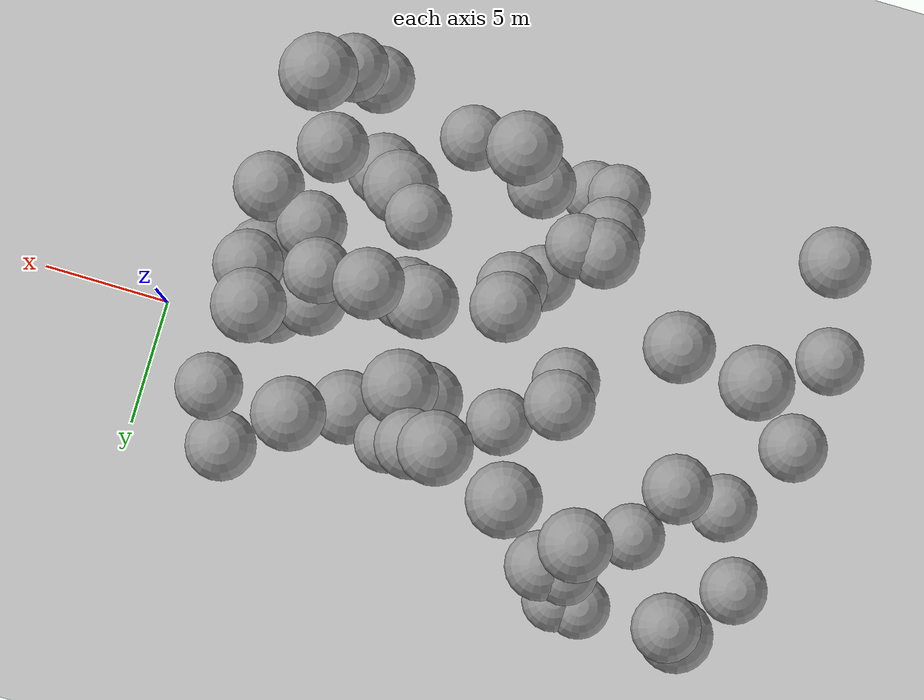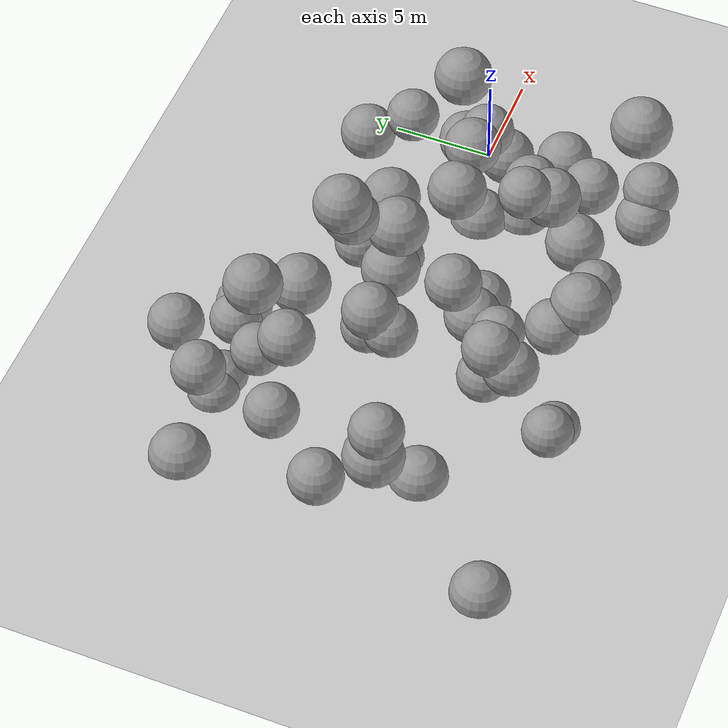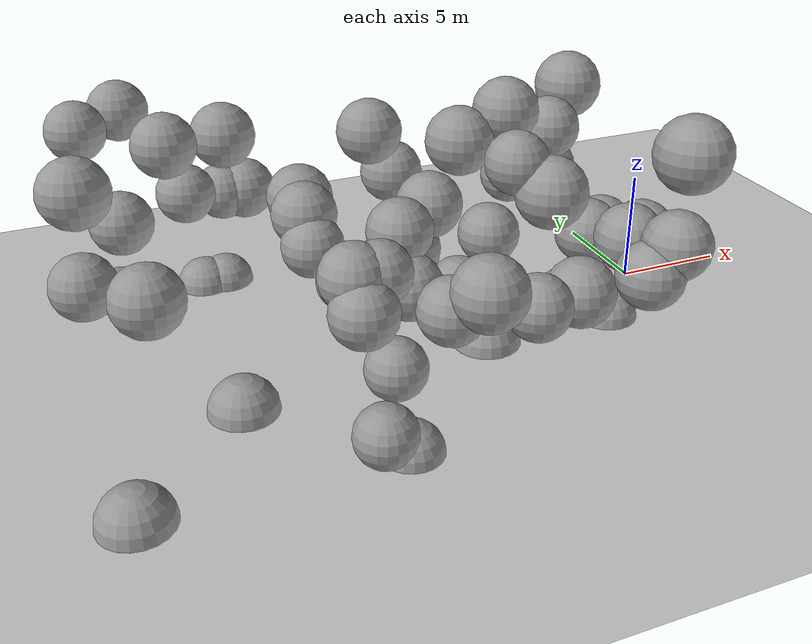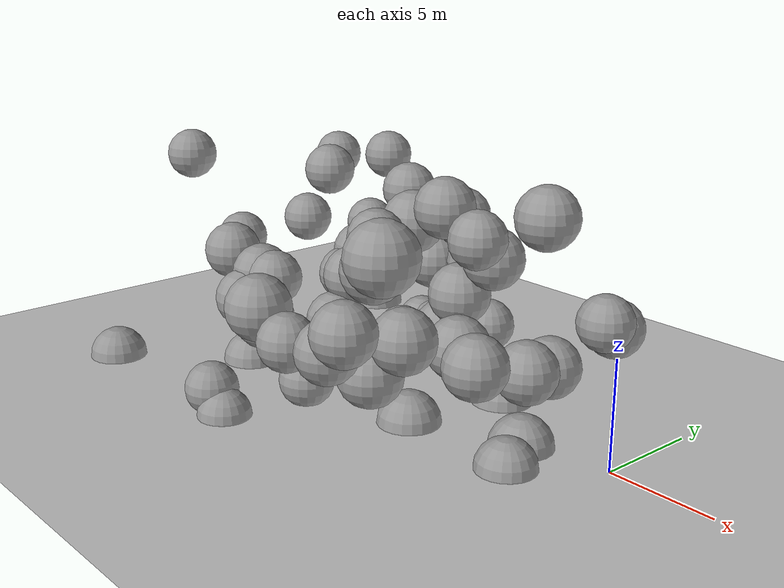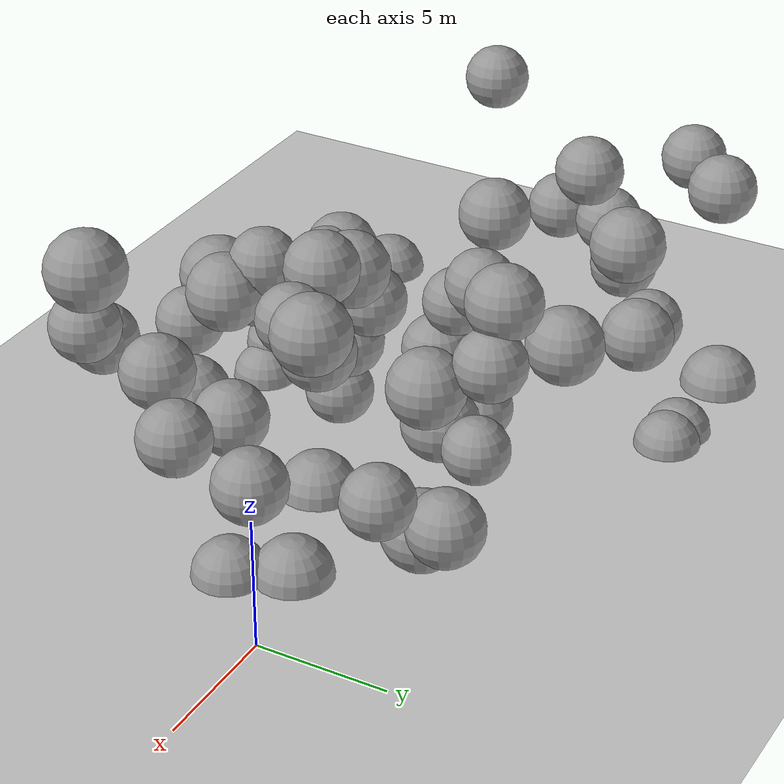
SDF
<sdf version="1.7">
 <world name="default">
  <model name="ground_plane">
   <static>1</static>
   <link name="link">
    <collision name="collision">
     <geometry><plane><normal>0 0 1</normal><size>100 100</size></plane></geometry>
     <surface>
      <contact><collide_bitmask>65535</collide_bitmask></contact>
      <friction><ode><mu>100</mu><mu2>50</mu2></ode></friction>
     </surface>
    </collision>
    <visual name="visual">
     <cast_shadows>0</cast_shadows>
     <geometry><plane><normal>0 0 1</normal><size>100 100</size></plane></geometry>
     <material>
      <script><uri>file://media/materials/scripts/gazebo.material</uri><name>Gazebo/Grey</name></script>
     </material>
    </visual>
   </link>
  </model>
  <model name="sphere_19">
   <static>1</static>
   <pose>-5 -7 6 0 0 0</pose>
   <link name="link">
    <inertial>
     <mass>1093.7044318353844</mass>
     <inertia>
      <ixx>829.5340265991515</ixx>
      <iyy>829.5340265991515</iyy>
      <izz>829.5340265991515</izz>
      <ixy>0</ixy>
      <ixz>0</ixz>
      <iyz>0</iyz>
     </inertia>
    </inertial>
    <collision name="collision">
     <geometry><sphere><radius>1.3770100847044313</radius></sphere></geometry>
    </collision>
    <visual name="visual">
     <geometry><sphere><radius>1.3770100847044313</radius></sphere></geometry>
     <material>
      <script><uri>file://media/materials/scripts/gazebo.material</uri><name>Gazebo/Grey</name></script>
     </material>
    </visual>
   </link>
  </model>
  <model name="sphere_20">
   <static>1</static>
   <pose>-12 -9 6 0 0 0</pose>
   <link name="link">
    <inertial>
     <mass>1336.6317615630337</mass>
     <inertia>
      <ixx>1158.8321791067362</ixx>
      <iyy>1158.8321791067362</iyy>
      <izz>1158.8321791067362</izz>
      <ixy>0</ixy>
      <ixz>0</ixz>
      <iyz>0</iyz>
     </inertia>
    </inertial>
    <collision name="collision">
     <geometry><sphere><radius>1.4722256810506325</radius></sphere></geometry>
    </collision>
    <visual name="visual">
     <geometry><sphere><radius>1.4722256810506325</radius></sphere></geometry>
     <material>
      <script><uri>file://media/materials/scripts/gazebo.material</uri><name>Gazebo/Grey</name></script>
     </material>
    </visual>
   </link>
  </model>
  <model name="sphere_26">
   <static>1</static>
   <pose>-15 -6 6 0 0 0</pose>
   <link name="link">
    <inertial>
     <mass>847.9089603285704</mass>
     <inertia>
      <ixx>542.7289144185544</ixx>
      <iyy>542.7289144185544</iyy>
      <izz>542.7289144185544</izz>
      <ixy>0</ixy>
      <ixz>0</ixz>
      <iyz>0</iyz>
     </inertia>
    </inertial>
    <collision name="collision">
     <geometry><sphere><radius>1.2649893576409998</radius></sphere></geometry>
    </collision>
    <visual name="visual">
     <geometry><sphere><radius>1.2649893576409998</radius></sphere></geometry>
     <material>
      <script><uri>file://media/materials/scripts/gazebo.material</uri><name>Gazebo/Grey</name></script>
     </material>
    </visual>
   </link>
  </model>
  <model name="sphere_32">
   <static>1</static>
   <pose>-23 7 0 0 0 0</pose>
   <link name="link">
    <inertial>
     <mass>1402.8813819536108</mass>
     <inertia>
      <ixx>1256.1336150803506</ixx>
      <iyy>1256.1336150803506</iyy>
      <izz>1256.1336150803506</izz>
      <ixy>0</ixy>
      <ixz>0</ixz>
      <iyz>0</iyz>
     </inertia>
    </inertial>
    <collision name="collision">
     <geometry><sphere><radius>1.4961579597967176</radius></sphere></geometry>
    </collision>
    <visual name="visual">
     <geometry><sphere><radius>1.4961579597967176</radius></sphere></geometry>
     <material>
      <script><uri>file://media/materials/scripts/gazebo.material</uri><name>Gazebo/Grey</name></script>
     </material>
    </visual>
   </link>
  </model>
  <model name="sphere_41">
   <static>1</static>
   <pose>-3 -2 4 0 0 0</pose>
   <link name="link">
    <inertial>
     <mass>1096.0352797248263</mass>
     <inertia>
      <ixx>832.482554544336</ixx>
      <iyy>832.482554544336</iyy>
      <izz>832.482554544336</izz>
      <ixy>0</ixy>
      <ixz>0</ixz>
      <iyz>0</iyz>
     </inertia>
    </inertial>
    <collision name="collision">
     <geometry><sphere><radius>1.3779875955093646</radius></sphere></geometry>
    </collision>
    <visual name="visual">
     <geometry><sphere><radius>1.3779875955093646</radius></sphere></geometry>
     <material>
      <script><uri>file://media/materials/scripts/gazebo.material</uri><name>Gazebo/Grey</name></script>
     </material>
    </visual>
   </link>
  </model>
  <model name="sphere_44">
   <static>1</static>
   <pose>-9 -5 9 0 0 0</pose>
   <link name="link">
    <inertial>
     <mass>824.6339255756457</mass>
     <inertia>
      <ixx>518.1270283856265</ixx>
      <iyy>518.1270283856265</iyy>
      <izz>518.1270283856265</izz>
      <ixy>0</ixy>
      <ixz>0</ixz>
      <iyz>0</iyz>
     </inertia>
    </inertial>
    <collision name="collision">
     <geometry><sphere><radius>1.25330718522653</radius></sphere></geometry>
    </collision>
    <visual name="visual">
     <geometry><sphere><radius>1.25330718522653</radius></sphere></geometry>
     <material>
      <script><uri>file://media/materials/scripts/gazebo.material</uri><name>Gazebo/Grey</name></script>
     </material>
    </visual>
   </link>
  </model>
  <model name="sphere_54">
   <static>1</static>
   <pose>-10 1 5 0 0 0</pose>
   <link name="link">
    <inertial>
     <mass>1391.169380083111</mass>
     <inertia>
      <ixx>1238.7041771213894</ixx>
      <iyy>1238.7041771213894</iyy>
      <izz>1238.7041771213894</izz>
      <ixy>0</ixy>
      <ixz>0</ixz>
      <iyz>0</iyz>
     </inertia>
    </inertial>
    <collision name="collision">
     <geometry><sphere><radius>1.4919827443478662</radius></sphere></geometry>
    </collision>
    <visual name="visual">
     <geometry><sphere><radius>1.4919827443478662</radius></sphere></geometry>
     <material>
      <script><uri>file://media/materials/scripts/gazebo.material</uri><name>Gazebo/Grey</name></script>
     </material>
    </visual>
   </link>
  </model>
  <model name="sphere_57">
   <static>1</static>
   <pose>-10 -9 5 0 0 0</pose>
   <link name="link">
    <inertial>
     <mass>907.7839191998896</mass>
     <inertia>
      <ixx>608.0954126280432</ixx>
      <iyy>608.0954126280432</iyy>
      <izz>608.0954126280432</izz>
      <ixy>0</ixy>
      <ixz>0</ixz>
      <iyz>0</iyz>
     </inertia>
    </inertial>
    <collision name="collision">
     <geometry><sphere><radius>1.2940904293056101</radius></sphere></geometry>
    </collision>
    <visual name="visual">
     <geometry><sphere><radius>1.2940904293056101</radius></sphere></geometry>
     <material>
      <script><uri>file://media/materials/scripts/gazebo.material</uri><name>Gazebo/Grey</name></script>
     </material>
    </visual>
   </link>
  </model>
  <model name="sphere_58">
   <static>1</static>
   <pose>-21 2 9 0 0 0</pose>
   <link name="link">
    <inertial>
     <mass>949.9771881731713</mass>
     <inertia>
      <ixx>655.9280644154733</ixx>
      <iyy>655.9280644154733</iyy>
      <izz>655.9280644154733</izz>
      <ixy>0</ixy>
      <ixz>0</ixz>
      <iyz>0</iyz>
     </inertia>
    </inertial>
    <collision name="collision">
     <geometry><sphere><radius>1.3138371036105974</radius></sphere></geometry>
    </collision>
    <visual name="visual">
     <geometry><sphere><radius>1.3138371036105974</radius></sphere></geometry>
     <material>
      <script><uri>file://media/materials/scripts/gazebo.material</uri><name>Gazebo/Grey</name></script>
     </material>
    </visual>
   </link>
  </model>
  <model name="sphere_67">
   <static>1</static>
   <pose>-12 3 8 0 0 0</pose>
   <link name="link">
    <inertial>
     <mass>1238.7565536485702</mass>
     <inertia>
      <ixx>1020.8866555947956</ixx>
      <iyy>1020.8866555947956</iyy>
      <izz>1020.8866555947956</izz>
      <ixy>0</ixy>
      <ixz>0</ixz>
      <iyz>0</iyz>
     </inertia>
    </inertial>
    <collision name="collision">
     <geometry><sphere><radius>1.4353763466368932</radius></sphere></geometry>
    </collision>
    <visual name="visual">
     <geometry><sphere><radius>1.4353763466368932</radius></sphere></geometry>
     <material>
      <script><uri>file://media/materials/scripts/gazebo.material</uri><name>Gazebo/Grey</name></script>
     </material>
    </visual>
   </link>
  </model>
  <model name="sphere_72">
   <static>1</static>
   <pose>-18 7 0 0 0 0</pose>
   <link name="link">
    <inertial>
     <mass>863.301847766727</mass>
     <inertia>
      <ixx>559.2491970385797</ixx>
      <iyy>559.2491970385797</iyy>
      <izz>559.2491970385797</izz>
      <ixy>0</ixy>
      <ixz>0</ixz>
      <iyz>0</iyz>
     </inertia>
    </inertial>
    <collision name="collision">
     <geometry><sphere><radius>1.2725983438620174</radius></sphere></geometry>
    </collision>
    <visual name="visual">
     <geometry><sphere><radius>1.2725983438620174</radius></sphere></geometry>
     <material>
      <script><uri>file://media/materials/scripts/gazebo.material</uri><name>Gazebo/Grey</name></script>
     </material>
    </visual>
   </link>
  </model>
  <model name="sphere_82">
   <static>1</static>
   <pose>-13 -8 5 0 0 0</pose>
   <link name="link">
    <inertial>
     <mass>993.5986481438041</mass>
     <inertia>
      <ixx>706.8911942818235</ixx>
      <iyy>706.8911942818235</iyy>
      <izz>706.8911942818235</izz>
      <ixy>0</ixy>
      <ixz>0</ixz>
      <iyz>0</iyz>
     </inertia>
    </inertial>
    <collision name="collision">
     <geometry><sphere><radius>1.333646698582785</radius></sphere></geometry>
    </collision>
    <visual name="visual">
     <geometry><sphere><radius>1.333646698582785</radius></sphere></geometry>
     <material>
      <script><uri>file://media/materials/scripts/gazebo.material</uri><name>Gazebo/Grey</name></script>
     </material>
    </visual>
   </link>
  </model>
  <model name="sphere_87">
   <static>1</static>
   <pose>-15 -9 0 0 0 0</pose>
   <link name="link">
    <inertial>
     <mass>879.4776927961007</mass>
     <inertia>
      <ixx>576.8226416967553</ixx>
      <iyy>576.8226416967553</iyy>
      <izz>576.8226416967553</izz>
      <ixy>0</ixy>
      <ixz>0</ixz>
      <iyz>0</iyz>
     </inertia>
    </inertial>
    <collision name="collision">
     <geometry><sphere><radius>1.2804975141626107</radius></sphere></geometry>
    </collision>
    <visual name="visual">
     <geometry><sphere><radius>1.2804975141626107</radius></sphere></geometry>
     <material>
      <script><uri>file://media/materials/scripts/gazebo.material</uri><name>Gazebo/Grey</name></script>
     </material>
    </visual>
   </link>
  </model>
  <model name="sphere_90">
   <static>1</static>
   <pose>-7 -7 4 0 0 0</pose>
   <link name="link">
    <inertial>
     <mass>1260.3667000807275</mass>
     <inertia>
      <ixx>1050.741258221471</ixx>
      <iyy>1050.741258221471</iyy>
      <izz>1050.741258221471</izz>
      <ixy>0</ixy>
      <ixz>0</ixz>
      <iyz>0</iyz>
     </inertia>
    </inertial>
    <collision name="collision">
     <geometry><sphere><radius>1.4436750035922459</radius></sphere></geometry>
    </collision>
    <visual name="visual">
     <geometry><sphere><radius>1.4436750035922459</radius></sphere></geometry>
     <material>
      <script><uri>file://media/materials/scripts/gazebo.material</uri><name>Gazebo/Grey</name></script>
     </material>
    </visual>
   </link>
  </model>
  <model name="sphere_97">
   <static>1</static>
   <pose>-6 -1 8 0 0 0</pose>
   <link name="link">
    <inertial>
     <mass>1048.4489450408112</mass>
     <inertia>
      <ixx>773.1190896051552</ixx>
      <iyy>773.1190896051552</iyy>
      <izz>773.1190896051552</izz>
      <ixy>0</ixy>
      <ixz>0</ixz>
      <iyz>0</iyz>
     </inertia>
    </inertial>
    <collision name="collision">
     <geometry><sphere><radius>1.3577492114806395</radius></sphere></geometry>
    </collision>
    <visual name="visual">
     <geometry><sphere><radius>1.3577492114806395</radius></sphere></geometry>
     <material>
      <script><uri>file://media/materials/scripts/gazebo.material</uri><name>Gazebo/Grey</name></script>
     </material>
    </visual>
   </link>
  </model>
  <model name="sphere_116">
   <static>1</static>
   <pose>-16 -6 6 0 0 0</pose>
   <link name="link">
    <inertial>
     <mass>1085.6466940816001</mass>
     <inertia>
      <ixx>819.3732387266793</ixx>
      <iyy>819.3732387266793</iyy>
      <izz>819.3732387266793</izz>
      <ixy>0</ixy>
      <ixz>0</ixz>
      <iyz>0</iyz>
     </inertia>
    </inertial>
    <collision name="collision">
     <geometry><sphere><radius>1.3736200930474969</radius></sphere></geometry>
    </collision>
    <visual name="visual">
     <geometry><sphere><radius>1.3736200930474969</radius></sphere></geometry>
     <material>
      <script><uri>file://media/materials/scripts/gazebo.material</uri><name>Gazebo/Grey</name></script>
     </material>
    </visual>
   </link>
  </model>
  <model name="sphere_117">
   <static>1</static>
   <pose>-20 -4 0 0 0 0</pose>
   <link name="link">
    <inertial>
     <mass>1292.4610515235715</mass>
     <inertia>
      <ixx>1095.7126927057595</ixx>
      <iyy>1095.7126927057595</iyy>
      <izz>1095.7126927057595</izz>
      <ixy>0</ixy>
      <ixz>0</ixz>
      <iyz>0</iyz>
     </inertia>
    </inertial>
    <collision name="collision">
     <geometry><sphere><radius>1.455826493042546</radius></sphere></geometry>
    </collision>
    <visual name="visual">
     <geometry><sphere><radius>1.455826493042546</radius></sphere></geometry>
     <material>
      <script><uri>file://media/materials/scripts/gazebo.material</uri><name>Gazebo/Grey</name></script>
     </material>
    </visual>
   </link>
  </model>
  <model name="sphere_123">
   <static>1</static>
   <pose>-25 -1 5 0 0 0</pose>
   <link name="link">
    <inertial>
     <mass>967.4909363237468</mass>
     <inertia>
      <ixx>676.2061148081732</ixx>
      <iyy>676.2061148081732</iyy>
      <izz>676.2061148081732</izz>
      <ixy>0</ixy>
      <ixz>0</ixz>
      <iyz>0</iyz>
     </inertia>
    </inertial>
    <collision name="collision">
     <geometry><sphere><radius>1.3218619411170471</radius></sphere></geometry>
    </collision>
    <visual name="visual">
     <geometry><sphere><radius>1.3218619411170471</radius></sphere></geometry>
     <material>
      <script><uri>file://media/materials/scripts/gazebo.material</uri><name>Gazebo/Grey</name></script>
     </material>
    </visual>
   </link>
  </model>
  <model name="sphere_126">
   <static>1</static>
   <pose>-6 -2 9 0 0 0</pose>
   <link name="link">
    <inertial>
     <mass>892.8227554067254</mass>
     <inertia>
      <ixx>591.4840022093439</ixx>
      <iyy>591.4840022093439</iyy>
      <izz>591.4840022093439</izz>
      <ixy>0</ixy>
      <ixz>0</ixz>
      <iyz>0</iyz>
     </inertia>
    </inertial>
    <collision name="collision">
     <geometry><sphere><radius>1.2869417211795229</radius></sphere></geometry>
    </collision>
    <visual name="visual">
     <geometry><sphere><radius>1.2869417211795229</radius></sphere></geometry>
     <material>
      <script><uri>file://media/materials/scripts/gazebo.material</uri><name>Gazebo/Grey</name></script>
     </material>
    </visual>
   </link>
  </model>
  <model name="sphere_146">
   <static>1</static>
   <pose>-16 0 6 0 0 0</pose>
   <link name="link">
    <inertial>
     <mass>1072.3725383331073</mass>
     <inertia>
      <ixx>802.7439817261618</ixx>
      <iyy>802.7439817261618</iyy>
      <izz>802.7439817261618</izz>
      <ixy>0</ixy>
      <ixz>0</ixz>
      <iyz>0</iyz>
     </inertia>
    </inertial>
    <collision name="collision">
     <geometry><sphere><radius>1.3679987215918732</radius></sphere></geometry>
    </collision>
    <visual name="visual">
     <geometry><sphere><radius>1.3679987215918732</radius></sphere></geometry>
     <material>
      <script><uri>file://media/materials/scripts/gazebo.material</uri><name>Gazebo/Grey</name></script>
     </material>
    </visual>
   </link>
  </model>
  <model name="sphere_150">
   <static>1</static>
   <pose>-8 -6 8 0 0 0</pose>
   <link name="link">
    <inertial>
     <mass>1221.5025415115083</mass>
     <inertia>
      <ixx>997.2978359589434</ixx>
      <iyy>997.2978359589434</iyy>
      <izz>997.2978359589434</izz>
      <ixy>0</ixy>
      <ixz>0</ixz>
      <iyz>0</iyz>
     </inertia>
    </inertial>
    <collision name="collision">
     <geometry><sphere><radius>1.428680954311747</radius></sphere></geometry>
    </collision>
    <visual name="visual">
     <geometry><sphere><radius>1.428680954311747</radius></sphere></geometry>
     <material>
      <script><uri>file://media/materials/scripts/gazebo.material</uri><name>Gazebo/Grey</name></script>
     </material>
    </visual>
   </link>
  </model>
  <model name="sphere_160">
   <static>1</static>
   <pose>-18 5 8 0 0 0</pose>
   <link name="link">
    <inertial>
     <mass>1180.0413639926112</mass>
     <inertia>
      <ixx>941.5201881384769</ixx>
      <iyy>941.5201881384769</iyy>
      <izz>941.5201881384769</izz>
      <ixy>0</ixy>
      <ixz>0</ixz>
      <iyz>0</iyz>
     </inertia>
    </inertial>
    <collision name="collision">
     <geometry><sphere><radius>1.4123300745465315</radius></sphere></geometry>
    </collision>
    <visual name="visual">
     <geometry><sphere><radius>1.4123300745465315</radius></sphere></geometry>
     <material>
      <script><uri>file://media/materials/scripts/gazebo.material</uri><name>Gazebo/Grey</name></script>
     </material>
    </visual>
   </link>
  </model>
  <model name="sphere_181">
   <static>1</static>
   <pose>-16 -7 5 0 0 0</pose>
   <link name="link">
    <inertial>
     <mass>1040.5050186181106</mass>
     <inertia>
      <ixx>763.3807728306685</ixx>
      <iyy>763.3807728306685</iyy>
      <izz>763.3807728306685</izz>
      <ixy>0</ixy>
      <ixz>0</ixz>
      <iyz>0</iyz>
     </inertia>
    </inertial>
    <collision name="collision">
     <geometry><sphere><radius>1.3543113661326367</radius></sphere></geometry>
    </collision>
    <visual name="visual">
     <geometry><sphere><radius>1.3543113661326367</radius></sphere></geometry>
     <material>
      <script><uri>file://media/materials/scripts/gazebo.material</uri><name>Gazebo/Grey</name></script>
     </material>
    </visual>
   </link>
  </model>
  <model name="sphere_183">
   <static>1</static>
   <pose>-6 -10 6 0 0 0</pose>
   <link name="link">
    <inertial>
     <mass>951.1149937679518</mass>
     <inertia>
      <ixx>657.2379494511117</ixx>
      <iyy>657.2379494511117</iyy>
      <izz>657.2379494511117</izz>
      <ixy>0</ixy>
      <ixz>0</ixz>
      <iyz>0</iyz>
     </inertia>
    </inertial>
    <collision name="collision">
     <geometry><sphere><radius>1.314361430160305</radius></sphere></geometry>
    </collision>
    <visual name="visual">
     <geometry><sphere><radius>1.314361430160305</radius></sphere></geometry>
     <material>
      <script><uri>file://media/materials/scripts/gazebo.material</uri><name>Gazebo/Grey</name></script>
     </material>
    </visual>
   </link>
  </model>
  <model name="sphere_184">
   <static>1</static>
   <pose>-4 -9 10 0 0 0</pose>
   <link name="link">
    <inertial>
     <mass>1360.6028986938393</mass>
     <inertia>
      <ixx>1193.6763010337531</ixx>
      <iyy>1193.6763010337531</iyy>
      <izz>1193.6763010337531</izz>
      <ixy>0</ixy>
      <ixz>0</ixz>
      <iyz>0</iyz>
     </inertia>
    </inertial>
    <collision name="collision">
     <geometry><sphere><radius>1.4809745458842436</radius></sphere></geometry>
    </collision>
    <visual name="visual">
     <geometry><sphere><radius>1.4809745458842436</radius></sphere></geometry>
     <material>
      <script><uri>file://media/materials/scripts/gazebo.material</uri><name>Gazebo/Grey</name></script>
     </material>
    </visual>
   </link>
  </model>
  <model name="sphere_187">
   <static>1</static>
   <pose>-24 5 9 0 0 0</pose>
   <link name="link">
    <inertial>
     <mass>820.4103253249524</mass>
     <inertia>
      <ixx>513.7116889614276</ixx>
      <iyy>513.7116889614276</iyy>
      <izz>513.7116889614276</izz>
      <ixy>0</ixy>
      <ixz>0</ixz>
      <iyz>0</iyz>
     </inertia>
    </inertial>
    <collision name="collision">
     <geometry><sphere><radius>1.2511637971032112</radius></sphere></geometry>
    </collision>
    <visual name="visual">
     <geometry><sphere><radius>1.2511637971032112</radius></sphere></geometry>
     <material>
      <script><uri>file://media/materials/scripts/gazebo.material</uri><name>Gazebo/Grey</name></script>
     </material>
    </visual>
   </link>
  </model>
  <model name="sphere_200">
   <static>1</static>
   <pose>-10 -2 9 0 0 0</pose>
   <link name="link">
    <inertial>
     <mass>1151.4332921802923</mass>
     <inertia>
      <ixx>903.785887753531</ixx>
      <iyy>903.785887753531</iyy>
      <izz>903.785887753531</izz>
      <ixy>0</ixy>
      <ixz>0</ixz>
      <iyz>0</iyz>
     </inertia>
    </inertial>
    <collision name="collision">
     <geometry><sphere><radius>1.4008234104061257</radius></sphere></geometry>
    </collision>
    <visual name="visual">
     <geometry><sphere><radius>1.4008234104061257</radius></sphere></geometry>
     <material>
      <script><uri>file://media/materials/scripts/gazebo.material</uri><name>Gazebo/Grey</name></script>
     </material>
    </visual>
   </link>
  </model>
  <model name="sphere_202">
   <static>1</static>
   <pose>-4 0 10 0 0 0</pose>
   <link name="link">
    <inertial>
     <mass>1169.5138225055937</mass>
     <inertia>
      <ixx>927.562502595368</ixx>
      <iyy>927.562502595368</iyy>
      <izz>927.562502595368</izz>
      <ixy>0</ixy>
      <ixz>0</ixz>
      <iyz>0</iyz>
     </inertia>
    </inertial>
    <collision name="collision">
     <geometry><sphere><radius>1.408117567095812</radius></sphere></geometry>
    </collision>
    <visual name="visual">
     <geometry><sphere><radius>1.408117567095812</radius></sphere></geometry>
     <material>
      <script><uri>file://media/materials/scripts/gazebo.material</uri><name>Gazebo/Grey</name></script>
     </material>
    </visual>
   </link>
  </model>
  <model name="sphere_212">
   <static>1</static>
   <pose>-9 -3 0 0 0 0</pose>
   <link name="link">
    <inertial>
     <mass>1392.4478318425963</mass>
     <inertia>
      <ixx>1240.60199130572</ixx>
      <iyy>1240.60199130572</iyy>
      <izz>1240.60199130572</izz>
      <ixy>0</ixy>
      <ixz>0</ixz>
      <iyz>0</iyz>
     </inertia>
    </inertial>
    <collision name="collision">
     <geometry><sphere><radius>1.492439636704356</radius></sphere></geometry>
    </collision>
    <visual name="visual">
     <geometry><sphere><radius>1.492439636704356</radius></sphere></geometry>
     <material>
      <script><uri>file://media/materials/scripts/gazebo.material</uri><name>Gazebo/Grey</name></script>
     </material>
    </visual>
   </link>
  </model>
  <model name="sphere_219">
   <static>1</static>
   <pose>-4 -1 0 0 0 0</pose>
   <link name="link">
    <inertial>
     <mass>1348.5713842491941</mass>
     <inertia>
      <ixx>1176.1358423186512</ixx>
      <iyy>1176.1358423186512</iyy>
      <izz>1176.1358423186512</izz>
      <ixy>0</ixy>
      <ixz>0</ixz>
      <iyz>0</iyz>
     </inertia>
    </inertial>
    <collision name="collision">
     <geometry><sphere><radius>1.476596303582682</radius></sphere></geometry>
    </collision>
    <visual name="visual">
     <geometry><sphere><radius>1.476596303582682</radius></sphere></geometry>
     <material>
      <script><uri>file://media/materials/scripts/gazebo.material</uri><name>Gazebo/Grey</name></script>
     </material>
    </visual>
   </link>
  </model>
  <model name="sphere_225">
   <static>1</static>
   <pose>-6 3 2 0 0 0</pose>
   <link name="link">
    <inertial>
     <mass>1389.6424950005355</mass>
     <inertia>
      <ixx>1236.439096013453</ixx>
      <iyy>1236.439096013453</iyy>
      <izz>1236.439096013453</izz>
      <ixy>0</ixy>
      <ixz>0</ixz>
      <iyz>0</iyz>
     </inertia>
    </inertial>
    <collision name="collision">
     <geometry><sphere><radius>1.4914367000921671</radius></sphere></geometry>
    </collision>
    <visual name="visual">
     <geometry><sphere><radius>1.4914367000921671</radius></sphere></geometry>
     <material>
      <script><uri>file://media/materials/scripts/gazebo.material</uri><name>Gazebo/Grey</name></script>
     </material>
    </visual>
   </link>
  </model>
  <model name="sphere_232">
   <static>1</static>
   <pose>-22 7 9 0 0 0</pose>
   <link name="link">
    <inertial>
     <mass>922.3401886848521</mass>
     <inertia>
      <ixx>624.4334205352977</ixx>
      <iyy>624.4334205352977</iyy>
      <izz>624.4334205352977</izz>
      <ixy>0</ixy>
      <ixz>0</ixz>
      <iyz>0</iyz>
     </inertia>
    </inertial>
    <collision name="collision">
     <geometry><sphere><radius>1.3009706761499937</radius></sphere></geometry>
    </collision>
    <visual name="visual">
     <geometry><sphere><radius>1.3009706761499937</radius></sphere></geometry>
     <material>
      <script><uri>file://media/materials/scripts/gazebo.material</uri><name>Gazebo/Grey</name></script>
     </material>
    </visual>
   </link>
  </model>
  <model name="sphere_235">
   <static>1</static>
   <pose>-14 -5 1 0 0 0</pose>
   <link name="link">
    <inertial>
     <mass>984.4318069457656</mass>
     <inertia>
      <ixx>696.0551438880052</ixx>
      <iyy>696.0551438880052</iyy>
      <izz>696.0551438880052</izz>
      <ixy>0</ixy>
      <ixz>0</ixz>
      <iyz>0</iyz>
     </inertia>
    </inertial>
    <collision name="collision">
     <geometry><sphere><radius>1.3295326571755477</radius></sphere></geometry>
    </collision>
    <visual name="visual">
     <geometry><sphere><radius>1.3295326571755477</radius></sphere></geometry>
     <material>
      <script><uri>file://media/materials/scripts/gazebo.material</uri><name>Gazebo/Grey</name></script>
     </material>
    </visual>
   </link>
  </model>
  <model name="sphere_236">
   <static>1</static>
   <pose>-14 1 2 0 0 0</pose>
   <link name="link">
    <inertial>
     <mass>959.9729022272484</mass>
     <inertia>
      <ixx>667.4712160315198</ixx>
      <iyy>667.4712160315198</iyy>
      <izz>667.4712160315198</izz>
      <ixy>0</ixy>
      <ixz>0</ixz>
      <iyz>0</iyz>
     </inertia>
    </inertial>
    <collision name="collision">
     <geometry><sphere><radius>1.3184291248361049</radius></sphere></geometry>
    </collision>
    <visual name="visual">
     <geometry><sphere><radius>1.3184291248361049</radius></sphere></geometry>
     <material>
      <script><uri>file://media/materials/scripts/gazebo.material</uri><name>Gazebo/Grey</name></script>
     </material>
    </visual>
   </link>
  </model>
  <model name="sphere_243">
   <static>1</static>
   <pose>-4 5 4 0 0 0</pose>
   <link name="link">
    <inertial>
     <mass>1110.7990267337273</mass>
     <inertia>
      <ixx>851.2557713936178</ixx>
      <iyy>851.2557713936178</iyy>
      <izz>851.2557713936178</izz>
      <ixy>0</ixy>
      <ixz>0</ixz>
      <iyz>0</iyz>
     </inertia>
    </inertial>
    <collision name="collision">
     <geometry><sphere><radius>1.384147248534672</radius></sphere></geometry>
    </collision>
    <visual name="visual">
     <geometry><sphere><radius>1.384147248534672</radius></sphere></geometry>
     <material>
      <script><uri>file://media/materials/scripts/gazebo.material</uri><name>Gazebo/Grey</name></script>
     </material>
    </visual>
   </link>
  </model>
  <model name="sphere_264">
   <static>1</static>
   <pose>-8 -2 10 0 0 0</pose>
   <link name="link">
    <inertial>
     <mass>1023.4214758661075</mass>
     <inertia>
      <ixx>742.6060139532641</ixx>
      <iyy>742.6060139532641</iyy>
      <izz>742.6060139532641</izz>
      <ixy>0</ixy>
      <ixz>0</ixz>
      <iyz>0</iyz>
     </inertia>
    </inertial>
    <collision name="collision">
     <geometry><sphere><radius>1.346858502567184</radius></sphere></geometry>
    </collision>
    <visual name="visual">
     <geometry><sphere><radius>1.346858502567184</radius></sphere></geometry>
     <material>
      <script><uri>file://media/materials/scripts/gazebo.material</uri><name>Gazebo/Grey</name></script>
     </material>
    </visual>
   </link>
  </model>
  <model name="sphere_266">
   <static>1</static>
   <pose>-5 -10 7 0 0 0</pose>
   <link name="link">
    <inertial>
     <mass>988.4298109375358</mass>
     <inertia>
      <ixx>700.772919098846</ixx>
      <iyy>700.772919098846</iyy>
      <izz>700.772919098846</izz>
      <ixy>0</ixy>
      <ixz>0</ixz>
      <iyz>0</iyz>
     </inertia>
    </inertial>
    <collision name="collision">
     <geometry><sphere><radius>1.3313300721017132</radius></sphere></geometry>
    </collision>
    <visual name="visual">
     <geometry><sphere><radius>1.3313300721017132</radius></sphere></geometry>
     <material>
      <script><uri>file://media/materials/scripts/gazebo.material</uri><name>Gazebo/Grey</name></script>
     </material>
    </visual>
   </link>
  </model>
  <model name="sphere_277">
   <static>1</static>
   <pose>-11 3 6 0 0 0</pose>
   <link name="link">
    <inertial>
     <mass>1086.8666690976636</mass>
     <inertia>
      <ixx>820.9084055410622</ixx>
      <iyy>820.9084055410622</iyy>
      <izz>820.9084055410622</izz>
      <ixy>0</ixy>
      <ixz>0</ixz>
      <iyz>0</iyz>
     </inertia>
    </inertial>
    <collision name="collision">
     <geometry><sphere><radius>1.3741344270035436</radius></sphere></geometry>
    </collision>
    <visual name="visual">
     <geometry><sphere><radius>1.3741344270035436</radius></sphere></geometry>
     <material>
      <script><uri>file://media/materials/scripts/gazebo.material</uri><name>Gazebo/Grey</name></script>
     </material>
    </visual>
   </link>
  </model>
  <model name="sphere_280">
   <static>1</static>
   <pose>-3 -3 0 0 0 0</pose>
   <link name="link">
    <inertial>
     <mass>1118.3221331201619</mass>
     <inertia>
      <ixx>860.8862781600178</ixx>
      <iyy>860.8862781600178</iyy>
      <izz>860.8862781600178</izz>
      <ixy>0</ixy>
      <ixz>0</ixz>
      <iyz>0</iyz>
     </inertia>
    </inertial>
    <collision name="collision">
     <geometry><sphere><radius>1.3872650242915137</radius></sphere></geometry>
    </collision>
    <visual name="visual">
     <geometry><sphere><radius>1.3872650242915137</radius></sphere></geometry>
     <material>
      <script><uri>file://media/materials/scripts/gazebo.material</uri><name>Gazebo/Grey</name></script>
     </material>
    </visual>
   </link>
  </model>
  <model name="sphere_281">
   <static>1</static>
   <pose>-25 -4 10 0 0 0</pose>
   <link name="link">
    <inertial>
     <mass>839.8722736873758</mass>
     <inertia>
      <ixx>534.1825033632879</ixx>
      <iyy>534.1825033632879</iyy>
      <izz>534.1825033632879</izz>
      <ixy>0</ixy>
      <ixz>0</ixz>
      <iyz>0</iyz>
     </inertia>
    </inertial>
    <collision name="collision">
     <geometry><sphere><radius>1.26098003848769</radius></sphere></geometry>
    </collision>
    <visual name="visual">
     <geometry><sphere><radius>1.26098003848769</radius></sphere></geometry>
     <material>
      <script><uri>file://media/materials/scripts/gazebo.material</uri><name>Gazebo/Grey</name></script>
     </material>
    </visual>
   </link>
  </model>
  <model name="sphere_286">
   <static>1</static>
   <pose>-17 6 5 0 0 0</pose>
   <link name="link">
    <inertial>
     <mass>1045.345363664573</mass>
     <inertia>
      <ixx>769.308588288145</ixx>
      <iyy>769.308588288145</iyy>
      <izz>769.308588288145</izz>
      <ixy>0</ixy>
      <ixz>0</ixz>
      <iyz>0</iyz>
     </inertia>
    </inertial>
    <collision name="collision">
     <geometry><sphere><radius>1.3564081670203676</radius></sphere></geometry>
    </collision>
    <visual name="visual">
     <geometry><sphere><radius>1.3564081670203676</radius></sphere></geometry>
     <material>
      <script><uri>file://media/materials/scripts/gazebo.material</uri><name>Gazebo/Grey</name></script>
     </material>
    </visual>
   </link>
  </model>
  <model name="sphere_291">
   <static>1</static>
   <pose>-16 -9 1 0 0 0</pose>
   <link name="link">
    <inertial>
     <mass>852.5639548881094</mass>
     <inertia>
      <ixx>547.7039387315137</ixx>
      <iyy>547.7039387315137</iyy>
      <izz>547.7039387315137</izz>
      <ixy>0</ixy>
      <ixz>0</ixz>
      <iyz>0</iyz>
     </inertia>
    </inertial>
    <collision name="collision">
     <geometry><sphere><radius>1.2673000520156854</radius></sphere></geometry>
    </collision>
    <visual name="visual">
     <geometry><sphere><radius>1.2673000520156854</radius></sphere></geometry>
     <material>
      <script><uri>file://media/materials/scripts/gazebo.material</uri><name>Gazebo/Grey</name></script>
     </material>
    </visual>
   </link>
  </model>
  <model name="sphere_294">
   <static>1</static>
   <pose>-13 -3 6 0 0 0</pose>
   <link name="link">
    <inertial>
     <mass>1075.0046240086513</mass>
     <inertia>
      <ixx>806.0304937219164</ixx>
      <iyy>806.0304937219164</iyy>
      <izz>806.0304937219164</izz>
      <ixy>0</ixy>
      <ixz>0</ixz>
      <iyz>0</iyz>
     </inertia>
    </inertial>
    <collision name="collision">
     <geometry><sphere><radius>1.3691170356776001</radius></sphere></geometry>
    </collision>
    <visual name="visual">
     <geometry><sphere><radius>1.3691170356776001</radius></sphere></geometry>
     <material>
      <script><uri>file://media/materials/scripts/gazebo.material</uri><name>Gazebo/Grey</name></script>
     </material>
    </visual>
   </link>
  </model>
  <model name="sphere_302">
   <static>1</static>
   <pose>-11 1 3 0 0 0</pose>
   <link name="link">
    <inertial>
     <mass>1298.6564751618275</mass>
     <inertia>
      <ixx>1104.480520177481</ixx>
      <iyy>1104.480520177481</iyy>
      <izz>1104.480520177481</izz>
      <ixy>0</ixy>
      <ixz>0</ixz>
      <iyz>0</iyz>
     </inertia>
    </inertial>
    <collision name="collision">
     <geometry><sphere><radius>1.4581489585153256</radius></sphere></geometry>
    </collision>
    <visual name="visual">
     <geometry><sphere><radius>1.4581489585153256</radius></sphere></geometry>
     <material>
      <script><uri>file://media/materials/scripts/gazebo.material</uri><name>Gazebo/Grey</name></script>
     </material>
    </visual>
   </link>
  </model>
  <model name="sphere_305">
   <static>1</static>
   <pose>-3 -5 5 0 0 0</pose>
   <link name="link">
    <inertial>
     <mass>1093.8847317452717</mass>
     <inertia>
      <ixx>829.7619570534506</ixx>
      <iyy>829.7619570534506</iyy>
      <izz>829.7619570534506</izz>
      <ixy>0</ixy>
      <ixz>0</ixz>
      <iyz>0</iyz>
     </inertia>
    </inertial>
    <collision name="collision">
     <geometry><sphere><radius>1.3770857483984795</radius></sphere></geometry>
    </collision>
    <visual name="visual">
     <geometry><sphere><radius>1.3770857483984795</radius></sphere></geometry>
     <material>
      <script><uri>file://media/materials/scripts/gazebo.material</uri><name>Gazebo/Grey</name></script>
     </material>
    </visual>
   </link>
  </model>
  <model name="sphere_322">
   <static>1</static>
   <pose>-15 4 5 0 0 0</pose>
   <link name="link">
    <inertial>
     <mass>1375.5625156640222</mass>
     <inertia>
      <ixx>1215.6301782047076</ixx>
      <iyy>1215.6301782047076</iyy>
      <izz>1215.6301782047076</izz>
      <ixy>0</ixy>
      <ixz>0</ixz>
      <iyz>0</iyz>
     </inertia>
    </inertial>
    <collision name="collision">
     <geometry><sphere><radius>1.4863824691156475</radius></sphere></geometry>
    </collision>
    <visual name="visual">
     <geometry><sphere><radius>1.4863824691156475</radius></sphere></geometry>
     <material>
      <script><uri>file://media/materials/scripts/gazebo.material</uri><name>Gazebo/Grey</name></script>
     </material>
    </visual>
   </link>
  </model>
  <model name="sphere_323">
   <static>1</static>
   <pose>-20 4 6 0 0 0</pose>
   <link name="link">
    <inertial>
     <mass>837.1865934908569</mass>
     <inertia>
      <ixx>531.3385915100885</ixx>
      <iyy>531.3385915100885</iyy>
      <izz>531.3385915100885</izz>
      <ixy>0</ixy>
      <ixz>0</ixz>
      <iyz>0</iyz>
     </inertia>
    </inertial>
    <collision name="collision">
     <geometry><sphere><radius>1.259634514315583</radius></sphere></geometry>
    </collision>
    <visual name="visual">
     <geometry><sphere><radius>1.259634514315583</radius></sphere></geometry>
     <material>
      <script><uri>file://media/materials/scripts/gazebo.material</uri><name>Gazebo/Grey</name></script>
     </material>
    </visual>
   </link>
  </model>
  <model name="sphere_332">
   <static>1</static>
   <pose>-10 3 3 0 0 0</pose>
   <link name="link">
    <inertial>
     <mass>838.2847423130983</mass>
     <inertia>
      <ixx>532.5007058647186</ixx>
      <iyy>532.5007058647186</iyy>
      <izz>532.5007058647186</izz>
      <ixy>0</ixy>
      <ixz>0</ixz>
      <iyz>0</iyz>
     </inertia>
    </inertial>
    <collision name="collision">
     <geometry><sphere><radius>1.2601850334763207</radius></sphere></geometry>
    </collision>
    <visual name="visual">
     <geometry><sphere><radius>1.2601850334763207</radius></sphere></geometry>
     <material>
      <script><uri>file://media/materials/scripts/gazebo.material</uri><name>Gazebo/Grey</name></script>
     </material>
    </visual>
   </link>
  </model>
  <model name="sphere_338">
   <static>1</static>
   <pose>-13 -4 4 0 0 0</pose>
   <link name="link">
    <inertial>
     <mass>1122.6338683035788</mass>
     <inertia>
      <ixx>866.4253531426367</ixx>
      <iyy>866.4253531426367</iyy>
      <izz>866.4253531426367</izz>
      <ixy>0</ixy>
      <ixz>0</ixz>
      <iyz>0</iyz>
     </inertia>
    </inertial>
    <collision name="collision">
     <geometry><sphere><radius>1.389045622902196</radius></sphere></geometry>
    </collision>
    <visual name="visual">
     <geometry><sphere><radius>1.389045622902196</radius></sphere></geometry>
     <material>
      <script><uri>file://media/materials/scripts/gazebo.material</uri><name>Gazebo/Grey</name></script>
     </material>
    </visual>
   </link>
  </model>
  <model name="sphere_342">
   <static>1</static>
   <pose>-5 -4 5 0 0 0</pose>
   <link name="link">
    <inertial>
     <mass>1081.1792579055061</mass>
     <inertia>
      <ixx>813.7614155512433</ixx>
      <iyy>813.7614155512433</iyy>
      <izz>813.7614155512433</izz>
      <ixy>0</ixy>
      <ixz>0</ixz>
      <iyz>0</iyz>
     </inertia>
    </inertial>
    <collision name="collision">
     <geometry><sphere><radius>1.3717333537917629</radius></sphere></geometry>
    </collision>
    <visual name="visual">
     <geometry><sphere><radius>1.3717333537917629</radius></sphere></geometry>
     <material>
      <script><uri>file://media/materials/scripts/gazebo.material</uri><name>Gazebo/Grey</name></script>
     </material>
    </visual>
   </link>
  </model>
  <model name="sphere_349">
   <static>1</static>
   <pose>-23 -3 5 0 0 0</pose>
   <link name="link">
    <inertial>
     <mass>1325.6690569021694</mass>
     <inertia>
      <ixx>1143.0347943354013</ixx>
      <iyy>1143.0347943354013</iyy>
      <izz>1143.0347943354013</izz>
      <ixy>0</ixy>
      <ixz>0</ixz>
      <iyz>0</iyz>
     </inertia>
    </inertial>
    <collision name="collision">
     <geometry><sphere><radius>1.4681896899487736</radius></sphere></geometry>
    </collision>
    <visual name="visual">
     <geometry><sphere><radius>1.4681896899487736</radius></sphere></geometry>
     <material>
      <script><uri>file://media/materials/scripts/gazebo.material</uri><name>Gazebo/Grey</name></script>
     </material>
    </visual>
   </link>
  </model>
  <model name="sphere_360">
   <static>1</static>
   <pose>-3 3 5 0 0 0</pose>
   <link name="link">
    <inertial>
     <mass>944.3221274481592</mass>
     <inertia>
      <ixx>649.4332631194363</ixx>
      <iyy>649.4332631194363</iyy>
      <izz>649.4332631194363</izz>
      <ixy>0</ixy>
      <ixz>0</ixz>
      <iyz>0</iyz>
     </inertia>
    </inertial>
    <collision name="collision">
     <geometry><sphere><radius>1.31122489337238</radius></sphere></geometry>
    </collision>
    <visual name="visual">
     <geometry><sphere><radius>1.31122489337238</radius></sphere></geometry>
     <material>
      <script><uri>file://media/materials/scripts/gazebo.material</uri><name>Gazebo/Grey</name></script>
     </material>
    </visual>
   </link>
  </model>
  <model name="sphere_370">
   <static>1</static>
   <pose>-8 2 0 0 0 0</pose>
   <link name="link">
    <inertial>
     <mass>1390.0849523888048</mass>
     <inertia>
      <ixx>1237.0952955695705</ixx>
      <iyy>1237.0952955695705</iyy>
      <izz>1237.0952955695705</izz>
      <ixy>0</ixy>
      <ixz>0</ixz>
      <iyz>0</iyz>
     </inertia>
    </inertial>
    <collision name="collision">
     <geometry><sphere><radius>1.491594972733157</radius></sphere></geometry>
    </collision>
    <visual name="visual">
     <geometry><sphere><radius>1.491594972733157</radius></sphere></geometry>
     <material>
      <script><uri>file://media/materials/scripts/gazebo.material</uri><name>Gazebo/Grey</name></script>
     </material>
    </visual>
   </link>
  </model>
  <model name="sphere_372">
   <static>1</static>
   <pose>-23 2 6 0 0 0</pose>
   <link name="link">
    <inertial>
     <mass>917.8840042669616</mass>
     <inertia>
      <ixx>619.413387717369</ixx>
      <iyy>619.413387717369</iyy>
      <izz>619.413387717369</izz>
      <ixy>0</ixy>
      <ixz>0</ixz>
      <iyz>0</iyz>
     </inertia>
    </inertial>
    <collision name="collision">
     <geometry><sphere><radius>1.2988721276570643</radius></sphere></geometry>
    </collision>
    <visual name="visual">
     <geometry><sphere><radius>1.2988721276570643</radius></sphere></geometry>
     <material>
      <script><uri>file://media/materials/scripts/gazebo.material</uri><name>Gazebo/Grey</name></script>
     </material>
    </visual>
   </link>
  </model>
  <model name="sphere_373">
   <static>1</static>
   <pose>-19 7 0 0 0 0</pose>
   <link name="link">
    <inertial>
     <mass>869.4202697291292</mass>
     <inertia>
      <ixx>565.8706735318093</ixx>
      <iyy>565.8706735318093</iyy>
      <izz>565.8706735318093</izz>
      <ixy>0</ixy>
      <ixz>0</ixz>
      <iyz>0</iyz>
     </inertia>
    </inertial>
    <collision name="collision">
     <geometry><sphere><radius>1.2755976699701705</radius></sphere></geometry>
    </collision>
    <visual name="visual">
     <geometry><sphere><radius>1.2755976699701705</radius></sphere></geometry>
     <material>
      <script><uri>file://media/materials/scripts/gazebo.material</uri><name>Gazebo/Grey</name></script>
     </material>
    </visual>
   </link>
  </model>
  <model name="sphere_388">
   <static>1</static>
   <pose>-25 -9 0 0 0 0</pose>
   <link name="link">
    <inertial>
     <mass>1259.0666785521216</mass>
     <inertia>
      <ixx>1048.935544921231</ixx>
      <iyy>1048.935544921231</iyy>
      <izz>1048.935544921231</izz>
      <ixy>0</ixy>
      <ixz>0</ixz>
      <iyz>0</iyz>
     </inertia>
    </inertial>
    <collision name="collision">
     <geometry><sphere><radius>1.4431784670839831</radius></sphere></geometry>
    </collision>
    <visual name="visual">
     <geometry><sphere><radius>1.4431784670839831</radius></sphere></geometry>
     <material>
      <script><uri>file://media/materials/scripts/gazebo.material</uri><name>Gazebo/Grey</name></script>
     </material>
    </visual>
   </link>
  </model>
  <model name="sphere_392">
   <static>1</static>
   <pose>-18 6 5 0 0 0</pose>
   <link name="link">
    <inertial>
     <mass>824.0143551477545</mass>
     <inertia>
      <ixx>517.478385450704</ixx>
      <iyy>517.478385450704</iyy>
      <izz>517.478385450704</izz>
      <ixy>0</ixy>
      <ixz>0</ixz>
      <iyz>0</iyz>
     </inertia>
    </inertial>
    <collision name="collision">
     <geometry><sphere><radius>1.252993225056703</radius></sphere></geometry>
    </collision>
    <visual name="visual">
     <geometry><sphere><radius>1.252993225056703</radius></sphere></geometry>
     <material>
      <script><uri>file://media/materials/scripts/gazebo.material</uri><name>Gazebo/Grey</name></script>
     </material>
    </visual>
   </link>
  </model>
  <model name="sphere_394">
   <static>1</static>
   <pose>-16 -1 5 0 0 0</pose>
   <link name="link">
    <inertial>
     <mass>936.5703131607022</mass>
     <inertia>
      <ixx>640.5724128469146</ixx>
      <iyy>640.5724128469146</iyy>
      <izz>640.5724128469146</izz>
      <ixy>0</ixy>
      <ixz>0</ixz>
      <iyz>0</iyz>
     </inertia>
    </inertial>
    <collision name="collision">
     <geometry><sphere><radius>1.3076271408114093</radius></sphere></geometry>
    </collision>
    <visual name="visual">
     <geometry><sphere><radius>1.3076271408114093</radius></sphere></geometry>
     <material>
      <script><uri>file://media/materials/scripts/gazebo.material</uri><name>Gazebo/Grey</name></script>
     </material>
    </visual>
   </link>
  </model>
 </world>
</sdf>
